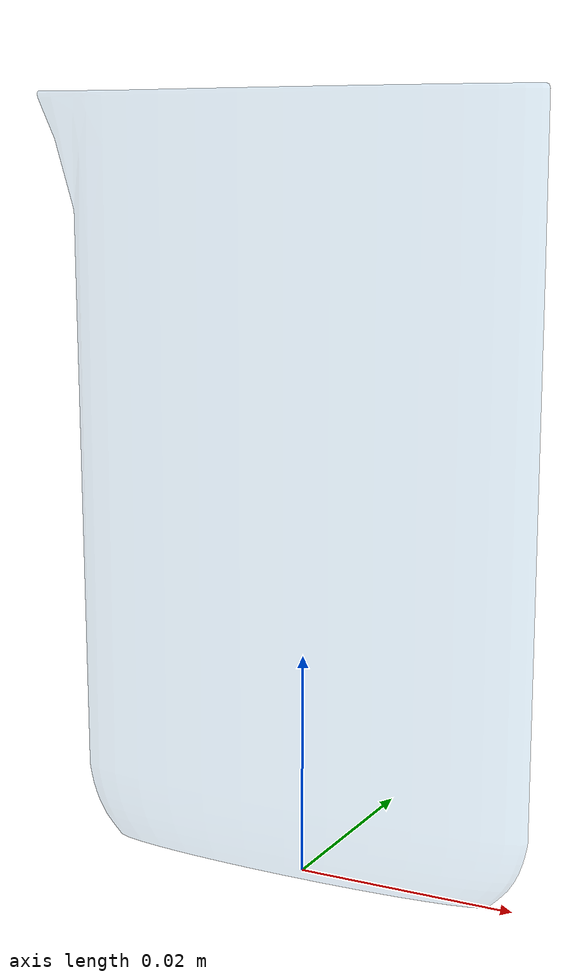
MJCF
<mujoco model="Beaker">

  <compiler angle="radian" meshdir="../../assets" />

  <option gravity="0 0 -9.81" />

  <asset>

    <mesh name="beaker_mesh" file="Beaker/base.obj" scale="1.300000 1.300000 0.140000" />
  </asset>

  <worldbody>

    <body name="beaker" quat="0.7071 0.7071 0 0" pos="0.145000 0.000000 -0.000000">

      <geom name="beaker_visual" type="mesh" mesh="beaker_mesh" rgba="0.65 0.85 1.0 0.3" contype="0" conaffinity="0" />

      <geom name="glass_sheet_collision_2" type="cylinder" size="0.021400 0.000200" pos="-0.146500 0.002450 -0.000000" euler="1.5708 0 0" contype="1" conaffinity="1" friction="0.6 0.2 0.001" density="2500" rgba="0 0 0 0" />
      <geom name="ring_1" type="box" size="0.010000 0.035000 0.000100" pos="-0.145500 0.036000 -0.002200" density="2500" contype="1" conaffinity="1" rgba="0 0 0 0" />
      <geom name="ring_2" type="box" size="0.010000 0.035000 0.000100" pos="-0.145500 0.036000 0.002200" density="2500" contype="1" conaffinity="1" rgba="0 0 0 0" />
      <geom name="ring_3" type="box" size="0.010000 0.035000 0.000100" pos="-0.125000 0.036000 -0.000000" density="2500" contype="1" conaffinity="1" euler="0 1.5708 0" rgba="0 0 0 0" />
      <geom name="ring_4" type="box" size="0.010000 0.035000 0.000100" density="2500" pos="-0.170000 0.036000 -0.000000" contype="1" conaffinity="1" euler="0 1.5708 0" rgba="0 0 0 0" />
      <geom name="ring_5" type="box" size="0.010000 0.035000 0.000100" pos="-0.163400 0.036000 -0.001530" density="2500" contype="1" conaffinity="1" euler="0 0.7854 0" rgba="0 0 0 0" />
      <geom name="ring_6" type="box" size="0.010000 0.035000 0.000100" pos="-0.131000 0.036000 0.001530" density="2500" contype="1" conaffinity="1" euler="0 0.7854 0" rgba="0 0 0 0" />
      <geom name="ring_7" type="box" size="0.010000 0.035000 0.000100" pos="-0.163400 0.036000 0.001530" density="2500" contype="1" conaffinity="1" euler="0 -0.7854 0" rgba="0 0 0 0" />
      <geom name="ring_8" type="box" size="0.010000 0.035000 0.000100" pos="-0.131000 0.036000 -0.001530" density="2500" contype="1" conaffinity="1" euler="0 -0.7854 0" rgba="0 0 0 0" />
    </body>
  </worldbody>
</mujoco>
